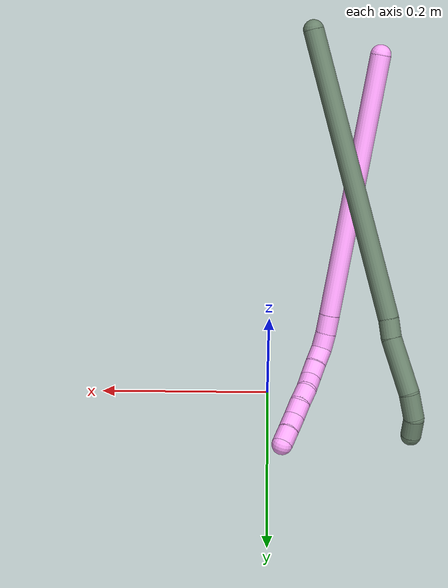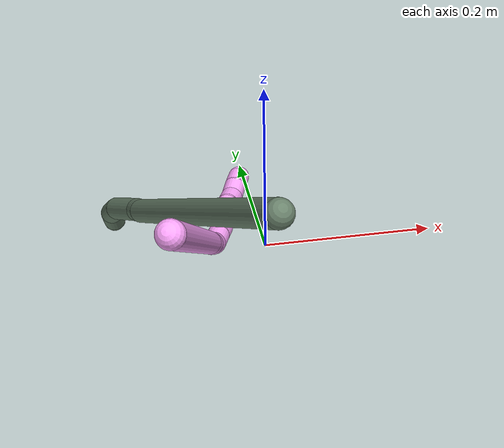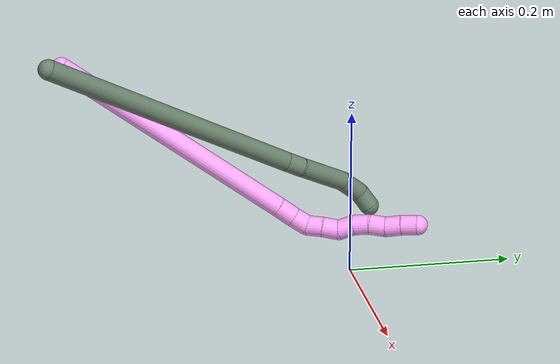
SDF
<sdf version="1.7">
 <world name="default">
  <model name="4">
   <static>0</static>
   <link name="4">
    <collision name="collision-cylinder-e_1_1_4">
     <pose>-0.017326 0.029912 -0.154836 -2.95076 -0.109431 1.03956</pose>
     <geometry><cylinder><radius>0.0125</radius><length>0.317296</length></cylinder></geometry>
     <surface>
      <friction><ode><mu>1.16</mu><mu2>1.16</mu2><slip1>0</slip1><slip2>0</slip2></ode></friction>
      <contact><ode><kp>1e+06</kp><kd>1</kd><max_vel>0</max_vel><min_depth>0.001</min_depth></ode></contact>
     </surface>
    </collision>
    <visual name="visual-cylinder-e_1_1_4">
     <pose>-0.017326 0.029912 -0.154836 -2.95076 -0.109431 1.03956</pose>
     <geometry><cylinder><radius>0.0125</radius><length>0.317296</length></cylinder></geometry>
     <material><ambient>1 0.65098 0.996078 1</ambient></material>
    </visual>
    <collision name="collision-cylinder-e_2_4_5">
     <pose>-0.035877 0.061721 -0.320797 -2.97266 -0.108056 1.13685</pose>
     <geometry><cylinder><radius>0.0125</radius><length>0.022704</length></cylinder></geometry>
     <surface>
      <friction><ode><mu>1.16</mu><mu2>1.16</mu2><slip1>0</slip1><slip2>0</slip2></ode></friction>
      <contact><ode><kp>1e+06</kp><kd>1</kd><max_vel>0</max_vel><min_depth>0.001</min_depth></ode></contact>
     </surface>
    </collision>
    <visual name="visual-cylinder-e_2_4_5">
     <pose>-0.035877 0.061721 -0.320797 -2.97266 -0.108056 1.13685</pose>
     <geometry><cylinder><radius>0.0125</radius><length>0.022704</length></cylinder></geometry>
     <material><ambient>1 0.65098 0.996078 1</ambient></material>
    </visual>
    <collision name="collision-cylinder-e_3_5_6">
     <pose>-0.037428 0.06586 -0.341662 -2.91537 -0.032704 0.285957</pose>
     <geometry><cylinder><radius>0.0125</radius><length>0.02</length></cylinder></geometry>
     <surface>
      <friction><ode><mu>1.16</mu><mu2>1.16</mu2><slip1>0</slip1><slip2>0</slip2></ode></friction>
      <contact><ode><kp>1e+06</kp><kd>1</kd><max_vel>0</max_vel><min_depth>0.001</min_depth></ode></contact>
     </surface>
    </collision>
    <visual name="visual-cylinder-e_3_5_6">
     <pose>-0.037428 0.06586 -0.341662 -2.91537 -0.032704 0.285957</pose>
     <geometry><cylinder><radius>0.0125</radius><length>0.02</length></cylinder></geometry>
     <material><ambient>1 0.65098 0.996078 1</ambient></material>
    </visual>
    <collision name="collision-cylinder-e_4_6_7">
     <pose>-0.036447 0.074492 -0.358983 -2.44119 0.13116 -0.355803</pose>
     <geometry><cylinder><radius>0.0125</radius><length>0.02</length></cylinder></geometry>
     <surface>
      <friction><ode><mu>1.16</mu><mu2>1.16</mu2><slip1>0</slip1><slip2>0</slip2></ode></friction>
      <contact><ode><kp>1e+06</kp><kd>1</kd><max_vel>0</max_vel><min_depth>0.001</min_depth></ode></contact>
     </surface>
    </collision>
    <visual name="visual-cylinder-e_4_6_7">
     <pose>-0.036447 0.074492 -0.358983 -2.44119 0.13116 -0.355803</pose>
     <geometry><cylinder><radius>0.0125</radius><length>0.02</length></cylinder></geometry>
     <material><ambient>1 0.65098 0.996078 1</ambient></material>
    </visual>
    <collision name="collision-cylinder-e_5_7_8">
     <pose>-0.034218 0.08658 -0.374729 -2.53236 0.092289 -0.291664</pose>
     <geometry><cylinder><radius>0.0125</radius><length>0.02</length></cylinder></geometry>
     <surface>
      <friction><ode><mu>1.16</mu><mu2>1.16</mu2><slip1>0</slip1><slip2>0</slip2></ode></friction>
      <contact><ode><kp>1e+06</kp><kd>1</kd><max_vel>0</max_vel><min_depth>0.001</min_depth></ode></contact>
     </surface>
    </collision>
    <visual name="visual-cylinder-e_5_7_8">
     <pose>-0.034218 0.08658 -0.374729 -2.53236 0.092289 -0.291664</pose>
     <geometry><cylinder><radius>0.0125</radius><length>0.02</length></cylinder></geometry>
     <material><ambient>1 0.65098 0.996078 1</ambient></material>
    </visual>
    <collision name="collision-cylinder-e_6_8_9">
     <pose>-0.032096 0.101262 -0.38712 -2.01038 0.12035 -0.189252</pose>
     <geometry><cylinder><radius>0.0125</radius><length>0.02</length></cylinder></geometry>
     <surface>
      <friction><ode><mu>1.16</mu><mu2>1.16</mu2><slip1>0</slip1><slip2>0</slip2></ode></friction>
      <contact><ode><kp>1e+06</kp><kd>1</kd><max_vel>0</max_vel><min_depth>0.001</min_depth></ode></contact>
     </surface>
    </collision>
    <visual name="visual-cylinder-e_6_8_9">
     <pose>-0.032096 0.101262 -0.38712 -2.01038 0.12035 -0.189252</pose>
     <geometry><cylinder><radius>0.0125</radius><length>0.02</length></cylinder></geometry>
     <material><ambient>1 0.65098 0.996078 1</ambient></material>
    </visual>
    <collision name="collision-cylinder-e_7_9_10">
     <pose>-0.028928 0.117637 -0.397786 -2.28765 0.198036 -0.429963</pose>
     <geometry><cylinder><radius>0.0125</radius><length>0.02</length></cylinder></geometry>
     <surface>
      <friction><ode><mu>1.16</mu><mu2>1.16</mu2><slip1>0</slip1><slip2>0</slip2></ode></friction>
      <contact><ode><kp>1e+06</kp><kd>1</kd><max_vel>0</max_vel><min_depth>0.001</min_depth></ode></contact>
     </surface>
    </collision>
    <visual name="visual-cylinder-e_7_9_10">
     <pose>-0.028928 0.117637 -0.397786 -2.28765 0.198036 -0.429963</pose>
     <geometry><cylinder><radius>0.0125</radius><length>0.02</length></cylinder></geometry>
     <material><ambient>1 0.65098 0.996078 1</ambient></material>
    </visual>
    <collision name="collision-cylinder-e_8_10_11">
     <pose>-0.025608 0.131035 -0.412108 -2.4902 0.135614 -0.396878</pose>
     <geometry><cylinder><radius>0.0125</radius><length>0.02</length></cylinder></geometry>
     <surface>
      <friction><ode><mu>1.16</mu><mu2>1.16</mu2><slip1>0</slip1><slip2>0</slip2></ode></friction>
      <contact><ode><kp>1e+06</kp><kd>1</kd><max_vel>0</max_vel><min_depth>0.001</min_depth></ode></contact>
     </surface>
    </collision>
    <visual name="visual-cylinder-e_8_10_11">
     <pose>-0.025608 0.131035 -0.412108 -2.4902 0.135614 -0.396878</pose>
     <geometry><cylinder><radius>0.0125</radius><length>0.02</length></cylinder></geometry>
     <material><ambient>1 0.65098 0.996078 1</ambient></material>
    </visual>
    <collision name="collision-cylinder-e_9_11_12">
     <pose>-0.022556 0.144877 -0.425965 -2.22257 0.170874 -0.342758</pose>
     <geometry><cylinder><radius>0.0125</radius><length>0.02</length></cylinder></geometry>
     <surface>
      <friction><ode><mu>1.16</mu><mu2>1.16</mu2><slip1>0</slip1><slip2>0</slip2></ode></friction>
      <contact><ode><kp>1e+06</kp><kd>1</kd><max_vel>0</max_vel><min_depth>0.001</min_depth></ode></contact>
     </surface>
    </collision>
    <visual name="visual-cylinder-e_9_11_12">
     <pose>-0.022556 0.144877 -0.425965 -2.22257 0.170874 -0.342758</pose>
     <geometry><cylinder><radius>0.0125</radius><length>0.02</length></cylinder></geometry>
     <material><ambient>1 0.65098 0.996078 1</ambient></material>
    </visual>
    <collision name="collision-cylinder-e_10_12_2">
     <pose>-0.019127 0.159929 -0.438645 -2.31922 0.173652 -0.39407</pose>
     <geometry><cylinder><radius>0.0125</radius><length>0.02</length></cylinder></geometry>
     <surface>
      <friction><ode><mu>1.16</mu><mu2>1.16</mu2><slip1>0</slip1><slip2>0</slip2></ode></friction>
      <contact><ode><kp>1e+06</kp><kd>1</kd><max_vel>0</max_vel><min_depth>0.001</min_depth></ode></contact>
     </surface>
    </collision>
    <visual name="visual-cylinder-e_10_12_2">
     <pose>-0.019127 0.159929 -0.438645 -2.31922 0.173652 -0.39407</pose>
     <geometry><cylinder><radius>0.0125</radius><length>0.02</length></cylinder></geometry>
     <material><ambient>1 0.65098 0.996078 1</ambient></material>
    </visual>
    <collision name="collision-sphere-2">
     <pose>-0.0174 0.167146 -0.445347 0 -0 0</pose>
     <geometry><sphere><radius>0.0125</radius></sphere></geometry>
     <surface>
      <friction><ode><mu>1.16</mu><mu2>1.16</mu2><slip1>0</slip1><slip2>0</slip2></ode></friction>
      <contact><ode><kp>1e+06</kp><kd>1</kd><max_vel>0</max_vel><min_depth>0.001</min_depth></ode></contact>
     </surface>
    </collision>
    <visual name="visual-sphere-2">
     <pose>-0.0174 0.167146 -0.445347 0 -0 0</pose>
     <geometry><sphere><radius>0.0125</radius></sphere></geometry>
     <material><ambient>1 0.65098 0.996078 1</ambient></material>
    </visual>
    <collision name="collision-sphere-12">
     <pose>-0.020855 0.152711 -0.431942 0 -0 0</pose>
     <geometry><sphere><radius>0.0125</radius></sphere></geometry>
     <surface>
      <friction><ode><mu>1.16</mu><mu2>1.16</mu2><slip1>0</slip1><slip2>0</slip2></ode></friction>
      <contact><ode><kp>1e+06</kp><kd>1</kd><max_vel>0</max_vel><min_depth>0.001</min_depth></ode></contact>
     </surface>
    </collision>
    <visual name="visual-sphere-12">
     <pose>-0.020855 0.152711 -0.431942 0 -0 0</pose>
     <geometry><sphere><radius>0.0125</radius></sphere></geometry>
     <material><ambient>1 0.65098 0.996078 1</ambient></material>
    </visual>
    <collision name="collision-sphere-11">
     <pose>-0.024256 0.137043 -0.419987 0 -0 0</pose>
     <geometry><sphere><radius>0.0125</radius></sphere></geometry>
     <surface>
      <friction><ode><mu>1.16</mu><mu2>1.16</mu2><slip1>0</slip1><slip2>0</slip2></ode></friction>
      <contact><ode><kp>1e+06</kp><kd>1</kd><max_vel>0</max_vel><min_depth>0.001</min_depth></ode></contact>
     </surface>
    </collision>
    <visual name="visual-sphere-11">
     <pose>-0.024256 0.137043 -0.419987 0 -0 0</pose>
     <geometry><sphere><radius>0.0125</radius></sphere></geometry>
     <material><ambient>1 0.65098 0.996078 1</ambient></material>
    </visual>
    <collision name="collision-sphere-10">
     <pose>-0.02696 0.125028 -0.404228 0 -0 0</pose>
     <geometry><sphere><radius>0.0125</radius></sphere></geometry>
     <surface>
      <friction><ode><mu>1.16</mu><mu2>1.16</mu2><slip1>0</slip1><slip2>0</slip2></ode></friction>
      <contact><ode><kp>1e+06</kp><kd>1</kd><max_vel>0</max_vel><min_depth>0.001</min_depth></ode></contact>
     </surface>
    </collision>
    <visual name="visual-sphere-10">
     <pose>-0.02696 0.125028 -0.404228 0 -0 0</pose>
     <geometry><sphere><radius>0.0125</radius></sphere></geometry>
     <material><ambient>1 0.65098 0.996078 1</ambient></material>
    </visual>
    <collision name="collision-sphere-9">
     <pose>-0.030895 0.110245 -0.391345 0 -0 0</pose>
     <geometry><sphere><radius>0.0125</radius></sphere></geometry>
     <surface>
      <friction><ode><mu>1.16</mu><mu2>1.16</mu2><slip1>0</slip1><slip2>0</slip2></ode></friction>
      <contact><ode><kp>1e+06</kp><kd>1</kd><max_vel>0</max_vel><min_depth>0.001</min_depth></ode></contact>
     </surface>
    </collision>
    <visual name="visual-sphere-9">
     <pose>-0.030895 0.110245 -0.391345 0 -0 0</pose>
     <geometry><sphere><radius>0.0125</radius></sphere></geometry>
     <material><ambient>1 0.65098 0.996078 1</ambient></material>
    </visual>
    <collision name="collision-sphere-4">
     <pose>-0.034653 0.059823 -0.309672 0 -0 0</pose>
     <geometry><sphere><radius>0.0125</radius></sphere></geometry>
     <surface>
      <friction><ode><mu>1.16</mu><mu2>1.16</mu2><slip1>0</slip1><slip2>0</slip2></ode></friction>
      <contact><ode><kp>1e+06</kp><kd>1</kd><max_vel>0</max_vel><min_depth>0.001</min_depth></ode></contact>
     </surface>
    </collision>
    <visual name="visual-sphere-4">
     <pose>-0.034653 0.059823 -0.309672 0 -0 0</pose>
     <geometry><sphere><radius>0.0125</radius></sphere></geometry>
     <material><ambient>1 0.65098 0.996078 1</ambient></material>
    </visual>
    <collision name="collision-sphere-1">
     <geometry><sphere><radius>0.0125</radius></sphere></geometry>
     <surface>
      <friction><ode><mu>1.16</mu><mu2>1.16</mu2><slip1>0</slip1><slip2>0</slip2></ode></friction>
      <contact><ode><kp>1e+06</kp><kd>1</kd><max_vel>0</max_vel><min_depth>0.001</min_depth></ode></contact>
     </surface>
    </collision>
    <visual name="visual-sphere-1">
     <geometry><sphere><radius>0.0125</radius></sphere></geometry>
     <material><ambient>1 0.65098 0.996078 1</ambient></material>
    </visual>
    <collision name="collision-sphere-8">
     <pose>-0.033296 0.092278 -0.382895 0 -0 0</pose>
     <geometry><sphere><radius>0.0125</radius></sphere></geometry>
     <surface>
      <friction><ode><mu>1.16</mu><mu2>1.16</mu2><slip1>0</slip1><slip2>0</slip2></ode></friction>
      <contact><ode><kp>1e+06</kp><kd>1</kd><max_vel>0</max_vel><min_depth>0.001</min_depth></ode></contact>
     </surface>
    </collision>
    <visual name="visual-sphere-8">
     <pose>-0.033296 0.092278 -0.382895 0 -0 0</pose>
     <geometry><sphere><radius>0.0125</radius></sphere></geometry>
     <material><ambient>1 0.65098 0.996078 1</ambient></material>
    </visual>
    <collision name="collision-sphere-5">
     <pose>-0.037101 0.063618 -0.331922 0 -0 0</pose>
     <geometry><sphere><radius>0.0125</radius></sphere></geometry>
     <surface>
      <friction><ode><mu>1.16</mu><mu2>1.16</mu2><slip1>0</slip1><slip2>0</slip2></ode></friction>
      <contact><ode><kp>1e+06</kp><kd>1</kd><max_vel>0</max_vel><min_depth>0.001</min_depth></ode></contact>
     </surface>
    </collision>
    <visual name="visual-sphere-5">
     <pose>-0.037101 0.063618 -0.331922 0 -0 0</pose>
     <geometry><sphere><radius>0.0125</radius></sphere></geometry>
     <material><ambient>1 0.65098 0.996078 1</ambient></material>
    </visual>
    <collision name="collision-sphere-6">
     <pose>-0.037755 0.068102 -0.351402 0 -0 0</pose>
     <geometry><sphere><radius>0.0125</radius></sphere></geometry>
     <surface>
      <friction><ode><mu>1.16</mu><mu2>1.16</mu2><slip1>0</slip1><slip2>0</slip2></ode></friction>
      <contact><ode><kp>1e+06</kp><kd>1</kd><max_vel>0</max_vel><min_depth>0.001</min_depth></ode></contact>
     </surface>
    </collision>
    <visual name="visual-sphere-6">
     <pose>-0.037755 0.068102 -0.351402 0 -0 0</pose>
     <geometry><sphere><radius>0.0125</radius></sphere></geometry>
     <material><ambient>1 0.65098 0.996078 1</ambient></material>
    </visual>
    <collision name="collision-sphere-7">
     <pose>-0.035139 0.080882 -0.366563 0 -0 0</pose>
     <geometry><sphere><radius>0.0125</radius></sphere></geometry>
     <surface>
      <friction><ode><mu>1.16</mu><mu2>1.16</mu2><slip1>0</slip1><slip2>0</slip2></ode></friction>
      <contact><ode><kp>1e+06</kp><kd>1</kd><max_vel>0</max_vel><min_depth>0.001</min_depth></ode></contact>
     </surface>
    </collision>
    <visual name="visual-sphere-7">
     <pose>-0.035139 0.080882 -0.366563 0 -0 0</pose>
     <geometry><sphere><radius>0.0125</radius></sphere></geometry>
     <material><ambient>1 0.65098 0.996078 1</ambient></material>
    </visual>
    <inertial>
     <pose>-0.022081 0.057051 -0.238305 0 -0 0</pose>
     <mass>0.5</mass>
     <inertia>
      <ixx>0.003648</ixx>
      <ixy>0</ixy>
      <ixz>0</ixz>
      <iyy>0.001013</iyy>
      <iyz>0</iyz>
      <izz>-0.000256</izz>
     </inertia>
    </inertial>
   </link>
   <pose>-0.131008 -0.332506 0.237517 0.796802 -0.202892 -0.21476</pose>
  </model>
  <model name="17">
   <static>0</static>
   <link name="17">
    <collision name="collision-cylinder-e_1_1_4">
     <pose>-0.026135 0.060714 -0.163971 -2.78697 -0.148375 0.78635</pose>
     <geometry><cylinder><radius>0.0125</radius><length>0.353586</length></cylinder></geometry>
     <surface>
      <friction><ode><mu>1.16</mu><mu2>1.16</mu2><slip1>0</slip1><slip2>0</slip2></ode></friction>
      <contact><ode><kp>1e+06</kp><kd>1</kd><max_vel>0</max_vel><min_depth>0.001</min_depth></ode></contact>
     </surface>
    </collision>
    <visual name="visual-cylinder-e_1_1_4">
     <pose>-0.026135 0.060714 -0.163971 -2.78697 -0.148375 0.78635</pose>
     <geometry><cylinder><radius>0.0125</radius><length>0.353586</length></cylinder></geometry>
     <material><ambient>0.415686 0.509804 0.423529 1</ambient></material>
    </visual>
    <collision name="collision-cylinder-e_2_4_5">
     <pose>-0.052704 0.126054 -0.33859 -2.73173 -0.037304 0.179018</pose>
     <geometry><cylinder><radius>0.0125</radius><length>0.023235</length></cylinder></geometry>
     <surface>
      <friction><ode><mu>1.16</mu><mu2>1.16</mu2><slip1>0</slip1><slip2>0</slip2></ode></friction>
      <contact><ode><kp>1e+06</kp><kd>1</kd><max_vel>0</max_vel><min_depth>0.001</min_depth></ode></contact>
     </surface>
    </collision>
    <visual name="visual-cylinder-e_2_4_5">
     <pose>-0.052704 0.126054 -0.33859 -2.73173 -0.037304 0.179018</pose>
     <geometry><cylinder><radius>0.0125</radius><length>0.023235</length></cylinder></geometry>
     <material><ambient>0.415686 0.509804 0.423529 1</ambient></material>
    </visual>
    <collision name="collision-cylinder-e_3_5_6">
     <pose>-0.060263 0.142911 -0.380677 -2.77058 -0.208167 1.01586</pose>
     <geometry><cylinder><radius>0.0125</radius><length>0.068958</length></cylinder></geometry>
     <surface>
      <friction><ode><mu>1.16</mu><mu2>1.16</mu2><slip1>0</slip1><slip2>0</slip2></ode></friction>
      <contact><ode><kp>1e+06</kp><kd>1</kd><max_vel>0</max_vel><min_depth>0.001</min_depth></ode></contact>
     </surface>
    </collision>
    <visual name="visual-cylinder-e_3_5_6">
     <pose>-0.060263 0.142911 -0.380677 -2.77058 -0.208167 1.01586</pose>
     <geometry><cylinder><radius>0.0125</radius><length>0.068958</length></cylinder></geometry>
     <material><ambient>0.415686 0.509804 0.423529 1</ambient></material>
    </visual>
    <collision name="collision-cylinder-e_4_6_7">
     <pose>-0.068509 0.158003 -0.427574 -2.95858 -0.071132 0.73981</pose>
     <geometry><cylinder><radius>0.0125</radius><length>0.031519</length></cylinder></geometry>
     <surface>
      <friction><ode><mu>1.16</mu><mu2>1.16</mu2><slip1>0</slip1><slip2>0</slip2></ode></friction>
      <contact><ode><kp>1e+06</kp><kd>1</kd><max_vel>0</max_vel><min_depth>0.001</min_depth></ode></contact>
     </surface>
    </collision>
    <visual name="visual-cylinder-e_4_6_7">
     <pose>-0.068509 0.158003 -0.427574 -2.95858 -0.071132 0.73981</pose>
     <geometry><cylinder><radius>0.0125</radius><length>0.031519</length></cylinder></geometry>
     <material><ambient>0.415686 0.509804 0.423529 1</ambient></material>
    </visual>
    <collision name="collision-cylinder-e_5_7_2">
     <pose>-0.066624 0.160142 -0.453953 3.07554 0.267948 2.66085</pose>
     <geometry><cylinder><radius>0.0125</radius><length>0.022701</length></cylinder></geometry>
     <surface>
      <friction><ode><mu>1.16</mu><mu2>1.16</mu2><slip1>0</slip1><slip2>0</slip2></ode></friction>
      <contact><ode><kp>1e+06</kp><kd>1</kd><max_vel>0</max_vel><min_depth>0.001</min_depth></ode></contact>
     </surface>
    </collision>
    <visual name="visual-cylinder-e_5_7_2">
     <pose>-0.066624 0.160142 -0.453953 3.07554 0.267948 2.66085</pose>
     <geometry><cylinder><radius>0.0125</radius><length>0.022701</length></cylinder></geometry>
     <material><ambient>0.415686 0.509804 0.423529 1</ambient></material>
    </visual>
    <collision name="collision-sphere-2">
     <pose>-0.063619 0.159419 -0.464875 0 -0 0</pose>
     <geometry><sphere><radius>0.0125</radius></sphere></geometry>
     <surface>
      <friction><ode><mu>1.16</mu><mu2>1.16</mu2><slip1>0</slip1><slip2>0</slip2></ode></friction>
      <contact><ode><kp>1e+06</kp><kd>1</kd><max_vel>0</max_vel><min_depth>0.001</min_depth></ode></contact>
     </surface>
    </collision>
    <visual name="visual-sphere-2">
     <pose>-0.063619 0.159419 -0.464875 0 -0 0</pose>
     <geometry><sphere><radius>0.0125</radius></sphere></geometry>
     <material><ambient>0.415686 0.509804 0.423529 1</ambient></material>
    </visual>
    <collision name="collision-sphere-7">
     <pose>-0.069629 0.160864 -0.443032 0 -0 0</pose>
     <geometry><sphere><radius>0.0125</radius></sphere></geometry>
     <surface>
      <friction><ode><mu>1.16</mu><mu2>1.16</mu2><slip1>0</slip1><slip2>0</slip2></ode></friction>
      <contact><ode><kp>1e+06</kp><kd>1</kd><max_vel>0</max_vel><min_depth>0.001</min_depth></ode></contact>
     </surface>
    </collision>
    <visual name="visual-sphere-7">
     <pose>-0.069629 0.160864 -0.443032 0 -0 0</pose>
     <geometry><sphere><radius>0.0125</radius></sphere></geometry>
     <material><ambient>0.415686 0.509804 0.423529 1</ambient></material>
    </visual>
    <collision name="collision-sphere-6">
     <pose>-0.067389 0.155142 -0.412117 0 -0 0</pose>
     <geometry><sphere><radius>0.0125</radius></sphere></geometry>
     <surface>
      <friction><ode><mu>1.16</mu><mu2>1.16</mu2><slip1>0</slip1><slip2>0</slip2></ode></friction>
      <contact><ode><kp>1e+06</kp><kd>1</kd><max_vel>0</max_vel><min_depth>0.001</min_depth></ode></contact>
     </surface>
    </collision>
    <visual name="visual-sphere-6">
     <pose>-0.067389 0.155142 -0.412117 0 -0 0</pose>
     <geometry><sphere><radius>0.0125</radius></sphere></geometry>
     <material><ambient>0.415686 0.509804 0.423529 1</ambient></material>
    </visual>
    <collision name="collision-sphere-5">
     <pose>-0.053137 0.130681 -0.349238 0 -0 0</pose>
     <geometry><sphere><radius>0.0125</radius></sphere></geometry>
     <surface>
      <friction><ode><mu>1.16</mu><mu2>1.16</mu2><slip1>0</slip1><slip2>0</slip2></ode></friction>
      <contact><ode><kp>1e+06</kp><kd>1</kd><max_vel>0</max_vel><min_depth>0.001</min_depth></ode></contact>
     </surface>
    </collision>
    <visual name="visual-sphere-5">
     <pose>-0.053137 0.130681 -0.349238 0 -0 0</pose>
     <geometry><sphere><radius>0.0125</radius></sphere></geometry>
     <material><ambient>0.415686 0.509804 0.423529 1</ambient></material>
    </visual>
    <collision name="collision-sphere-1">
     <geometry><sphere><radius>0.0125</radius></sphere></geometry>
     <surface>
      <friction><ode><mu>1.16</mu><mu2>1.16</mu2><slip1>0</slip1><slip2>0</slip2></ode></friction>
      <contact><ode><kp>1e+06</kp><kd>1</kd><max_vel>0</max_vel><min_depth>0.001</min_depth></ode></contact>
     </surface>
    </collision>
    <visual name="visual-sphere-1">
     <geometry><sphere><radius>0.0125</radius></sphere></geometry>
     <material><ambient>0.415686 0.509804 0.423529 1</ambient></material>
    </visual>
    <collision name="collision-sphere-4">
     <pose>-0.052271 0.121428 -0.327942 0 -0 0</pose>
     <geometry><sphere><radius>0.0125</radius></sphere></geometry>
     <surface>
      <friction><ode><mu>1.16</mu><mu2>1.16</mu2><slip1>0</slip1><slip2>0</slip2></ode></friction>
      <contact><ode><kp>1e+06</kp><kd>1</kd><max_vel>0</max_vel><min_depth>0.001</min_depth></ode></contact>
     </surface>
    </collision>
    <visual name="visual-sphere-4">
     <pose>-0.052271 0.121428 -0.327942 0 -0 0</pose>
     <geometry><sphere><radius>0.0125</radius></sphere></geometry>
     <material><ambient>0.415686 0.509804 0.423529 1</ambient></material>
    </visual>
    <inertial>
     <pose>-0.036586 0.085734 -0.231756 0 -0 0</pose>
     <mass>0.5</mass>
     <inertia>
      <ixx>0.005214</ixx>
      <ixy>0</ixy>
      <ixz>0</ixz>
      <iyy>0.000299</iyy>
      <iyz>0</iyz>
      <izz>-0.000765</izz>
     </inertia>
    </inertial>
   </link>
   <pose>-0.050901 -0.352956 0.259007 0.696664 0.149067 0.047518</pose>
  </model>
 </world>
</sdf>
